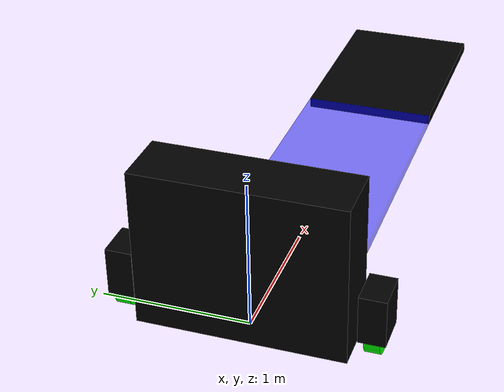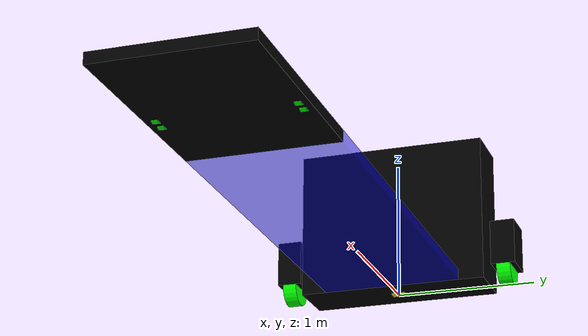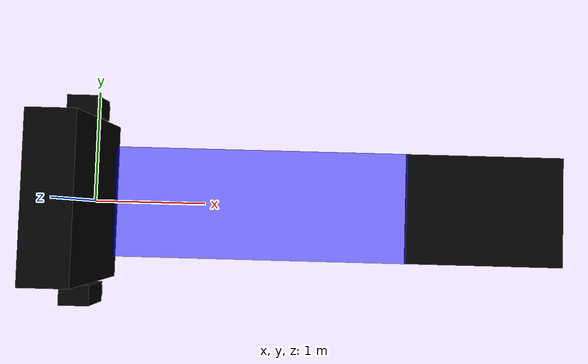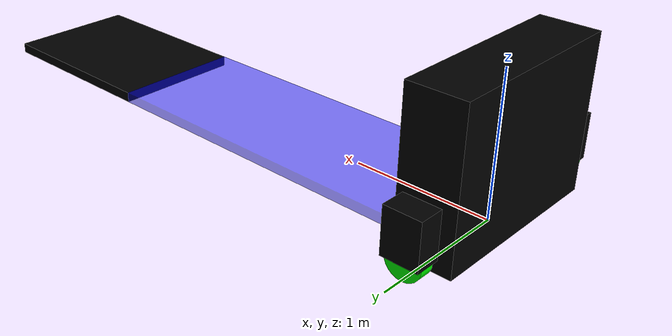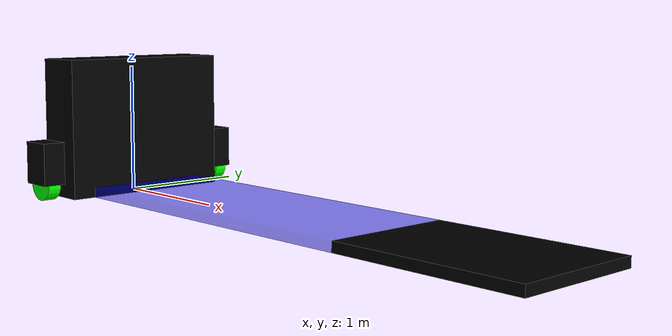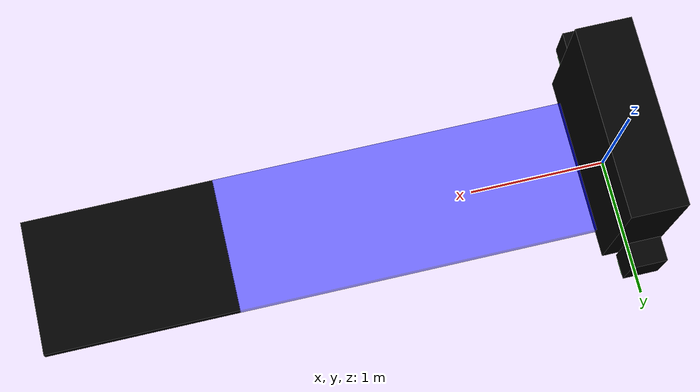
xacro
<?xml version="1.0"?>
<robot
    xmlns:gazebo="http://playerstage.sourceforge.net/gazebo/xmlschema/#gz"
    xmlns:model="http://playerstage.sourceforge.net/gazebo/xmlschema/#model"
    xmlns:sensor="http://playerstage.sourceforge.net/gazebo/xmlschema/#sensor"
    xmlns:body="http://playerstage.sourceforge.net/gazebo/xmlschema/#body"
    xmlns:geom="http://playerstage.sourceforge.net/gazebo/xmlschema/#geom"
    xmlns:joint="http://playerstage.sourceforge.net/gazebo/xmlschema/#joint"
    xmlns:controller="http://playerstage.sourceforge.net/gazebo/xmlschema/#controller"
    xmlns:interface="http://playerstage.sourceforge.net/gazebo/xmlschema/#interface"
    xmlns:rendering="http://playerstage.sourceforge.net/gazebo/xmlschema/#rendering"
    xmlns:physics="http://playerstage.sourceforge.net/gazebo/xmlschema/#physics"
    xmlns:xacro="http://www.ros.org/wiki/xacro"
    name="simple_robot">

    <xacro:include filename="$(find basic_robot_pkg)/urdf/robot_simplified.gazebo" />

    <!-- Physical Constant Macros -->
    <xacro:property name="PI" value="3.1415926535897931" />

    <!-- Dimension Macros -->
    <xacro:property name="wheelRadius" value="0.127" />
    <xacro:property name="wheelWidth" value="0.1" />
    <xacro:property name="wheelWeight" value="10" />

    <xacro:property name="casterWheelRadius" value="0.041" />
    <xacro:property name="casterWheelWidth" value="0.041" />
    <xacro:property name="casterWheelWeight" value="4" />

    <xacro:property name="baseWeight" value="700" />
    <xacro:property name="baseWidth" value="1.36" />
    <xacro:property name="baseHeight" value="1.07" />
    <xacro:property name="baseDepth" value="0.4" />

    <xacro:property name="bottomMotorWeight" value="70" />
    <xacro:property name="bottomMotorWidth" value="0.176" />
    <xacro:property name="bottomMotorHeight" value="0.325" />
    <xacro:property name="bottomMotorDepth" value="0.258" />

    <xacro:property name="mobileFrameWeight" value="400" />
    <xacro:property name="mobileFrameWidth" value="0.992" />
    <xacro:property name="mobileFrameHeight" value="0.075" />
    <xacro:property name="mobileFrameDepth" value="2.638" />

    <xacro:property name="trolleyTopWeight" value="200" />
    <xacro:property name="trolleyTopWidth" value="0.992" />
    <xacro:property name="trolleyTopHeight" value="0.075" />
    <xacro:property name="trolleyTopDepth" value="1.417" />

    <xacro:property name="trolleyBottomWeight" value="60" />
    <xacro:property name="trolleyBottomWidth" value="0.978" />
    <xacro:property name="trolleyBottomHeight" value="0.067" />
    <xacro:property name="trolleyBottomDepth" value="0.382" />

    <xacro:property name="wheelsAxleSpacing" value="1.680" />
    <xacro:property name="castersAxleSpacing" value="0.861" />
    <xacro:property name="castersSpaceFrontRear" value="0.09" />
    <xacro:property name="distanceToTheGround" value="0.01" />
    <xacro:property name="distanceFromTrolleyTopToTrolleyBottom" value="0.1525" />
    <xacro:property name="heightCasterWheels" value="${-trolleyTopHeight/2.0 - distanceToTheGround + casterWheelRadius}" />

    <!-- Physical Physics Macros -->
    <xacro:property name="maxInt" value="2147483647" />
    <xacro:property name="PROPULSION_MAX_VELOCITY" value="1.00"/> <!-- radians/sec -->
    <xacro:property name="PROPULSION_MAX_EFFORT" value="10000"/>
    <xacro:property name="DIRECTION_MAX_VELOCITY" value="1.57"/> <!-- radian/sec -->
    <xacro:property name="DIRECTION_MAX_EFFORT" value="10000000000"/>
    <xacro:property name="ELEVATION_MAX_EFFORT" value="40000"/>
    <xacro:property name="ELEVATION_MAX_VELOCITY" value="0.1"/>
    <xacro:property name="EXTEND_MAX_EFFORT" value="1000000"/>
    <xacro:property name="EXTEND_MAX_VELOCITY" value="0.06"/>
    <xacro:property name="ROULETTE_MAX_EFFORT" value="800"/>
    <xacro:property name="ROULETTE_MAX_VELOCITY" value="100"/>

    <!-- Physical Material Macros -->
    <material name="Red">
    	<color rgba="1.0 0 0 1.0"/>
    </material>
    <material name="Green">
    	<color rgba="0 1.0 0 1.0"/>
    </material>
    <material name="Blue">
    	<color rgba="0 0 1.0 0.5"/>
    </material>
    <material name="Black">
    	<color rgba="0 0 0 1.0"/>
    </material>
    <material name="Aqua">
    	<color rgba="0 255 255 1.0"/>
    </material>

<link name="base_footprint">
        <visual>
    <origin xyz="0 0 ${distanceToTheGround}" rpy="0 0 0" />
    <geometry>
        <box size="0.001 0.001 0.001" />
    </geometry>
</visual>

<inertial>
<origin
        xyz="0 0.0 0"
        rpy="0 0 0" />
<mass
        value="0.0001" />
<inertia
        ixx="0"
        ixy="0"
        ixz="0"
        iyy="0"
        iyz="0"
        izz="0" />
</inertial>

</link>

<joint name="base_link_joint" type="fixed">
        <origin xyz="0 0 ${baseHeight/2+distanceToTheGround}" rpy="0 0 0" />
        <parent link="base_footprint"/>
        <child link="base_link" />
</joint>
<gazebo reference="base_link_joint">
  <disableFixedJointLumping>true</disableFixedJointLumping>
</gazebo>

    <link name="base_link">
        <inertial>
            <mass value="${baseWeight}" />
            <origin xyz="0 0 0" />
            <inertia  ixx="${baseWeight*1.0/12.0*(baseWidth*baseWidth + baseHeight*baseHeight)}" ixy="0.0"  ixz="0.0"  iyy="${baseWeight*1.0/12.0*(baseDepth*baseDepth + baseHeight*baseHeight)}"  iyz="0.0"  izz="${baseWeight*1.0/12.0*(baseWidth*baseWidth + baseDepth*baseDepth)}" />
        </inertial>
        <visual>
            <origin xyz="0 0 0" rpy="0 0 0" />
            <geometry>
                <box size="${baseDepth} ${baseWidth} ${baseHeight}" />
            </geometry>
            <material name="Black"/>
        </visual>
        <collision>
            <origin xyz="0 0 0" rpy="0 0 0" />
            <geometry>
                <box size="${baseDepth} ${baseWidth} ${baseHeight}" />
            </geometry>
        </collision>
    </link>
    <gazebo reference="base_link">
        <material>Gazebo/Black</material>
    </gazebo>

<joint name="base_link_to_bottom_motor_left" type="continuous">
    <parent link="base_link"/>
    <child link="bottom_motor_left"/>
    <origin xyz="0.0 ${-baseWidth/2.0 - wheelRadius} ${-baseHeight/2.0 - distanceToTheGround + wheelRadius + bottomMotorHeight/2.0}"/>
    <axis xyz="0 0 -1"/>
    <limit lower="${-maxInt}" upper="${maxInt}" effort="${DIRECTION_MAX_EFFORT}" velocity="${DIRECTION_MAX_VELOCITY}" />
</joint>
<gazebo reference="base_link_to_bottom_motor_left">
  <disableFixedJointLumping>true</disableFixedJointLumping>
</gazebo>

<link name="bottom_motor_left">
    <inertial>
        <mass value="${bottomMotorWeight}" />
        <origin xyz="0 0 0" />
        <inertia  ixx="${bottomMotorWeight*1.0/12.0*(bottomMotorWidth*bottomMotorWidth + bottomMotorHeight*bottomMotorHeight)}" ixy="0.0"  ixz="0.0"  iyy="${bottomMotorWeight*1.0/12.0*(bottomMotorDepth*bottomMotorDepth + bottomMotorHeight*bottomMotorHeight)}"  iyz="0.0"  izz="${bottomMotorWeight*1.0/12.0*(bottomMotorWidth*bottomMotorWidth + bottomMotorDepth*bottomMotorDepth)}" />
    </inertial>
    <visual>
        <origin xyz="0 0 0" rpy="0 0 0" />
        <geometry>
            <box size="${bottomMotorDepth} ${bottomMotorWidth} ${bottomMotorHeight}" />
        </geometry>
        <material name="Black"/>
    </visual>
    <collision>
        <origin xyz="0 0 0" rpy="0 0 0" />
        <geometry>
            <box size="${bottomMotorDepth} ${bottomMotorWidth} ${bottomMotorHeight}" />
        </geometry>
    </collision>
</link>
<gazebo reference="bottom_motor_left">
    <material>Gazebo/Black</material>
</gazebo>

<joint name="bottom_motor_left_to_left_wheel" type="continuous">
    <parent link="bottom_motor_left"/>
    <child link="left_wheel"/>
    <origin xyz="0.0 0.0 ${-bottomMotorHeight/2.0}"/>
    <axis xyz="0 -1 0"/>
    <limit lower="0" upper="0" effort="${PROPULSION_MAX_EFFORT}" velocity="${PROPULSION_MAX_VELOCITY}" />
</joint>
<gazebo reference="bottom_motor_left_to_left_wheel">
  <disableFixedJointLumping>true</disableFixedJointLumping>
</gazebo>

<link name="left_wheel">
    <inertial>
        <mass value="${wheelWeight}" />
        <origin xyz="0 0 0" />
        <inertia  ixx="${wheelWeight*1.0/12.0*(3*wheelRadius*wheelRadius + wheelWidth*wheelWidth)}" ixy="0.0"  ixz="0.0"  iyy="${wheelWeight/2.0*(wheelRadius*wheelRadius)}"  iyz="0.0"  izz="${wheelWeight*1.0/12.0*(3*wheelRadius*wheelRadius + wheelWidth*wheelWidth)}" />
    </inertial>
    <visual>
        <origin xyz="0 0 0" rpy="${PI/2} 0 0" />
        <geometry>
            <cylinder radius="${wheelRadius}" length="${wheelWidth}" />
        </geometry>
        <material name="Green"/>
    </visual>
    <collision>
        <origin xyz="0 0 0" rpy="${PI/2} 0 0" />
        <geometry>
            <cylinder radius="${wheelRadius}" length="${wheelWidth}" />
        </geometry>
    </collision>
</link>
<gazebo reference="left_wheel">
    <material>Gazebo/Green</material>
</gazebo>

<joint name="base_link_to_bottom_motor_right" type="continuous">
    <parent link="base_link"/>
    <child link="bottom_motor_right"/>
    <origin xyz="0.0 ${baseWidth/2.0 + wheelRadius} ${-baseHeight/2.0 - distanceToTheGround + wheelRadius + bottomMotorHeight/2.0}"/>
    <axis xyz="0 0 -1"/>
    <limit lower="${-maxInt}" upper="${maxInt}" effort="${DIRECTION_MAX_EFFORT}" velocity="${DIRECTION_MAX_VELOCITY}" />
</joint>
<gazebo reference="base_link_to_bottom_motor_right">
  <disableFixedJointLumping>true</disableFixedJointLumping>
</gazebo>

<link name="bottom_motor_right">
    <inertial>
        <mass value="${bottomMotorWeight}" />
        <origin xyz="0 0 0" />
        <inertia  ixx="${bottomMotorWeight*1.0/12.0*(bottomMotorWidth*bottomMotorWidth + bottomMotorHeight*bottomMotorHeight)}" ixy="0.0"  ixz="0.0"  iyy="${bottomMotorWeight*1.0/12.0*(bottomMotorDepth*bottomMotorDepth+ bottomMotorHeight*bottomMotorHeight)}"  iyz="0.0"  izz="${bottomMotorWeight*1.0/12.0*(bottomMotorWidth*bottomMotorWidth + bottomMotorDepth*bottomMotorDepth)}" />
    </inertial>
    <visual>
        <origin xyz="0 0 0" rpy="0 0 0" />
        <geometry>
            <box size="${bottomMotorDepth} ${bottomMotorWidth} ${bottomMotorHeight}" />
        </geometry>
        <material name="Black"/>
    </visual>
    <collision>
        <origin xyz="0 0 0" rpy="0 0 0" />
        <geometry>
            <box size="${bottomMotorDepth} ${bottomMotorWidth} ${bottomMotorHeight}" />
        </geometry>
    </collision>
</link>
<gazebo reference="bottom_motor_right">
    <material>Gazebo/Black</material>
</gazebo>

<joint name="bottom_motor_right_to_right_wheel" type="continuous">
    <parent link="bottom_motor_right"/>
    <child link="right_wheel"/>
    <origin xyz="0.0 0.0 ${-bottomMotorHeight/2.0}"/>
    <axis xyz="0 -1 0"/>
    <limit lower="0" upper="0" effort="${PROPULSION_MAX_EFFORT}" velocity="${PROPULSION_MAX_VELOCITY}" />
</joint>
<gazebo reference="bottom_motor_right_to_right_wheel">
  <disableFixedJointLumping>true</disableFixedJointLumping>
</gazebo>

<link name="right_wheel">
    <inertial>
        <mass value="${wheelWeight}" />
        <origin xyz="0 0 0" />
        <inertia  ixx="${wheelWeight*1.0/12.0*(3*wheelRadius*wheelRadius + wheelWidth*wheelWidth)}" ixy="0.0"  ixz="0.0"  iyy="${wheelWeight/2.0*(wheelRadius*wheelRadius)}"  iyz="0.0"  izz="${wheelWeight*1.0/12.0*(3*wheelRadius*wheelRadius + wheelWidth*wheelWidth)}" />
    </inertial>
    <visual>
        <origin xyz="0 0 0" rpy="${PI/2} 0 0" />
        <geometry>
            <cylinder radius="${wheelRadius}" length="${wheelWidth}" />
        </geometry>
        <material name="Green"/>
    </visual>
    <collision>
        <origin xyz="0 0 0" rpy="${PI/2} 0 0" />
        <geometry>
            <cylinder radius="${wheelRadius}" length="${wheelWidth}" />
        </geometry>
    </collision>
</link>
<gazebo reference="right_wheel">
    <material>Gazebo/Green</material>
</gazebo>

<joint name="base_link_to_mobile_frame" type="prismatic">
    <parent link="base_link"/>
    <child link="mobile_frame"/>
    <origin xyz="${baseDepth/2.0 + mobileFrameDepth/2.0} 0.0 ${-baseHeight/2.0 + mobileFrameHeight/2.0}"/>
    <axis xyz="0 0 1"/>
    <limit lower="0" upper="0.10" effort="${ELEVATION_MAX_EFFORT}" velocity="${ELEVATION_MAX_VELOCITY}"/>
</joint>
<gazebo reference="base_link_to_mobile_frame">
  <disableFixedJointLumping>true</disableFixedJointLumping>
</gazebo>

<link name="mobile_frame">
    <inertial>
        <mass value="${mobileFrameWeight}" />
        <origin xyz="0 0 0" />
        <inertia  ixx="${mobileFrameWeight*1.0/12.0*(mobileFrameWidth*mobileFrameWidth + mobileFrameHeight*mobileFrameHeight)}" ixy="0.0"  ixz="0.0"  iyy="${mobileFrameWeight*1.0/12.0*(mobileFrameDepth*mobileFrameDepth + mobileFrameHeight*mobileFrameHeight)}"  iyz="0.0"  izz="${mobileFrameWeight*1.0/12.0*(mobileFrameWidth*mobileFrameWidth + mobileFrameDepth*mobileFrameDepth)}" />
    </inertial>
    <visual>
        <origin xyz="0 0 0" rpy="0 0 0" />
        <geometry>
            <box size="${mobileFrameDepth} ${mobileFrameWidth} ${mobileFrameHeight}" />
        </geometry>
        <material name="Blue"/>
    </visual>
    <collision>
        <origin xyz="0 0 0" rpy="0 0 0" />
        <geometry>
            <box size="${mobileFrameDepth} ${mobileFrameWidth} ${mobileFrameHeight}" />
        </geometry>
    </collision>
</link>
<gazebo reference="mobile_frame">
    <material>Gazebo/Blue</material>
</gazebo>

<joint name="mobile_frame_to_trolley_top" type="prismatic">
    <parent link="mobile_frame"/>
    <child link="trolley_top"/>
    <origin xyz="${mobileFrameDepth/2.0 + trolleyTopDepth/2.0} 0.0 0.0"/>
    <axis xyz="1 0 0" />
    <limit lower="0" upper="1.8" effort="${EXTEND_MAX_EFFORT}" velocity="${EXTEND_MAX_VELOCITY}" />
</joint>
<gazebo reference="mobile_frame_to_trolley_top">
  <disableFixedJointLumping>true</disableFixedJointLumping>
</gazebo>

<link name="trolley_top">
    <inertial>
        <mass value="${trolleyTopWeight}" />
        <origin xyz="0 0 0" />
        <inertia  ixx="${trolleyTopWeight*1.0/12.0*(trolleyTopWidth*trolleyTopWidth + trolleyTopHeight*trolleyTopHeight)}" ixy="0.0"  ixz="0.0"  iyy="${trolleyTopWeight*1.0/12.0*(trolleyTopDepth*trolleyTopDepth + trolleyTopHeight*trolleyTopHeight)}"  iyz="0.0"  izz="${trolleyTopWeight*1.0/12.0*(trolleyTopWidth*trolleyTopWidth + trolleyTopDepth*trolleyTopDepth)}" />
    </inertial>
    <visual>
        <origin xyz="0 0 0" rpy="0 0 0" />
        <geometry>
            <box size="${trolleyTopDepth} ${trolleyTopWidth} ${trolleyTopHeight}" />
        </geometry>
        <material name="Black"/>
    </visual>
    <collision>
        <origin xyz="0 0 0" rpy="0 0 0" />
        <geometry>
            <box size="${trolleyTopDepth} ${trolleyTopWidth} ${trolleyTopHeight}" />
        </geometry>
    </collision>
</link>
<gazebo reference="trolley_top">
    <material>Gazebo/Black</material>
</gazebo>

<joint name="trolley_top_to_trolley_bottom" type="prismatic">
    <parent link="trolley_top"/>
    <child link="trolley_bottom"/>
    <origin xyz="${-distanceFromTrolleyTopToTrolleyBottom} 0.0 0.0"/>
    <axis xyz="0 0 -1" />
    <limit lower="0" upper="0.1" effort="${ELEVATION_MAX_EFFORT}" velocity="${ELEVATION_MAX_VELOCITY}" />
</joint>
<gazebo reference="trolley_top_to_trolley_bottom">
  <disableFixedJointLumping>true</disableFixedJointLumping>
</gazebo>

<link name="trolley_bottom">
    <inertial>
        <mass value="${trolleyBottomWeight}" />
        <origin xyz="0 0 0" />
        <inertia  ixx="${trolleyBottomWeight*1.0/12.0*(trolleyBottomWidth*trolleyBottomWidth + trolleyBottomHeight*trolleyBottomHeight)}" ixy="0.0"  ixz="0.0"  iyy="${trolleyBottomWeight*1.0/12.0*(trolleyBottomDepth*trolleyBottomDepth + trolleyBottomHeight*trolleyBottomHeight)}"  iyz="0.0"  izz="${trolleyBottomWeight*1.0/12.0*(trolleyBottomWidth*trolleyBottomWidth + trolleyBottomDepth*trolleyBottomDepth)}" />
    </inertial>
    <visual>
        <origin xyz="0 0 0" rpy="0 0 0" />
        <geometry>
            <box size="${trolleyBottomDepth} ${trolleyBottomWidth} ${trolleyBottomHeight}" />
        </geometry>
        <material name="Blue"/>
    </visual>
    <collision>
        <origin xyz="0 0 0" rpy="0 0 0" />
        <geometry>
            <box size="${trolleyBottomDepth} ${trolleyBottomWidth} ${trolleyBottomHeight}" />
        </geometry>
    </collision>
</link>
<gazebo reference="trolley_Bottom">
    <material>Gazebo/Blue</material>
</gazebo>

<joint name="trolley_bottom_to_caster_0_left" type="continuous">
    <parent link="trolley_bottom"/>
    <child link="caster_0_left"/>
    <origin xyz="${-castersSpaceFrontRear/2.0} ${-castersAxleSpacing/2.0} ${heightCasterWheels}"/>
    <axis xyz="0 1 0" />
    <limit effort="${ROULETTE_MAX_EFFORT}" velocity="${ROULETTE_MAX_VELOCITY}"/>
</joint>
<gazebo reference="trolley_bottom_to_caster_0_left">
  <disableFixedJointLumping>true</disableFixedJointLumping>
</gazebo>

<link name="caster_0_left">
    <inertial>
        <mass value="${casterWheelWeight}" />
        <origin xyz="0 0 0" />
        <inertia  ixx="${casterWheelWeight*1.0/12.0*(3*casterWheelRadius*casterWheelRadius + casterWheelWidth*casterWheelWidth)}" ixy="0.0"  ixz="0.0"  iyy="${casterWheelWeight/2.0*(casterWheelRadius*casterWheelRadius)}"  iyz="0.0"  izz="${casterWheelWeight*1.0/12.0*(3*casterWheelRadius*casterWheelRadius + casterWheelWidth*casterWheelWidth)}" />
    </inertial>
    <visual>
        <origin xyz="0 0 0" rpy="${PI/2} 0 0" />
        <geometry>
            <cylinder radius="${casterWheelRadius}" length="${casterWheelWidth}" />
        </geometry>
        <material name="Green"/>
    </visual>
    <collision>
        <origin xyz="0 0 0" rpy="${PI/2} 0 0" />
        <geometry>
            <cylinder radius="${casterWheelRadius}" length="${casterWheelWidth}" />
        </geometry>
    </collision>
</link>

<gazebo reference="caster_0_left">
    <material>Gazebo/Green</material>
</gazebo>

<joint name="trolley_bottom_to_caster_1_left" type="continuous">
    <parent link="trolley_bottom"/>
    <child link="caster_1_left"/>
    <origin xyz="${castersSpaceFrontRear/2.0} ${-castersAxleSpacing/2.0} ${heightCasterWheels}"/>
    <axis xyz="0 1 0" />
    <limit effort="${ROULETTE_MAX_EFFORT}" velocity="${ROULETTE_MAX_VELOCITY}"/>
</joint>
<gazebo reference="trolley_bottom_to_caster_1_left">
  <disableFixedJointLumping>true</disableFixedJointLumping>
</gazebo>

<link name="caster_1_left">
    <inertial>
        <mass value="${casterWheelWeight}" />
        <origin xyz="0 0 0" />
        <inertia  ixx="${casterWheelWeight*1.0/12.0*(3*casterWheelRadius*casterWheelRadius + casterWheelWidth*casterWheelWidth)}" ixy="0.0"  ixz="0.0"  iyy="${casterWheelWeight/2.0*(casterWheelRadius*casterWheelRadius)}"  iyz="0.0"  izz="${casterWheelWeight*1.0/12.0*(3*casterWheelRadius*casterWheelRadius + casterWheelWidth*casterWheelWidth)}" />
    </inertial>
    <visual>
        <origin xyz="0 0 0" rpy="${PI/2} 0 0" />
        <geometry>
            <cylinder radius="${casterWheelRadius}" length="${casterWheelWidth}" />
        </geometry>
        <material name="Green"/>
    </visual>
    <collision>
        <origin xyz="0 0 0" rpy="${PI/2} 0 0" />
        <geometry>
            <cylinder radius="${casterWheelRadius}" length="${casterWheelWidth}" />
        </geometry>
    </collision>
</link>

<gazebo reference="caster_1_left">
    <material>Gazebo/Green</material>
</gazebo>

<joint name="trolley_bottom_to_caster_0_right" type="continuous">
    <parent link="trolley_bottom"/>
    <child link="caster_0_right"/>
    <origin xyz="${-castersSpaceFrontRear/2.0} ${castersAxleSpacing/2.0} ${heightCasterWheels}"/>
    <axis xyz="0 1 0" />
    <limit effort="${ROULETTE_MAX_EFFORT}" velocity="${ROULETTE_MAX_VELOCITY}"/>
</joint>
<gazebo reference="trolley_bottom_to_caster_0_right">
  <disableFixedJointLumping>true</disableFixedJointLumping>
</gazebo>

<link name="caster_0_right">
    <inertial>
        <mass value="${casterWheelWeight}" />
        <origin xyz="0 0 0" />
        <inertia  ixx="${casterWheelWeight*1.0/12.0*(3*casterWheelRadius*casterWheelRadius + casterWheelWidth*casterWheelWidth)}" ixy="0.0"  ixz="0.0"  iyy="${casterWheelWeight/2.0*(casterWheelRadius*casterWheelRadius)}"  iyz="0.0"  izz="${casterWheelWeight*1.0/12.0*(3*casterWheelRadius*casterWheelRadius + casterWheelWidth*casterWheelWidth)}" />
    </inertial>
    <visual>
        <origin xyz="0 0 0" rpy="${PI/2} 0 0" />
        <geometry>
            <cylinder radius="${casterWheelRadius}" length="${casterWheelWidth}" />
        </geometry>
        <material name="Green"/>
    </visual>
    <collision>
        <origin xyz="0 0 0" rpy="${PI/2} 0 0" />
        <geometry>
            <cylinder radius="${casterWheelRadius}" length="${casterWheelWidth}" />
        </geometry>
    </collision>
</link>

<gazebo reference="caster_0_right">
    <material>Gazebo/Green</material>
</gazebo>

<joint name="trolley_bottom_to_caster_1_right" type="continuous">
    <parent link="trolley_bottom"/>
    <child link="caster_1_right"/>
    <origin xyz="${castersSpaceFrontRear/2.0} ${castersAxleSpacing/2.0} ${heightCasterWheels}"/>
    <axis xyz="0 1 0" />
    <limit effort="${ROULETTE_MAX_EFFORT}" velocity="${ROULETTE_MAX_VELOCITY}"/>
</joint>
<gazebo reference="trolley_bottom_to_caster_1_right">
  <disableFixedJointLumping>true</disableFixedJointLumping>
</gazebo>

<link name="caster_1_right">
    <inertial>
        <mass value="${casterWheelWeight}" />
        <origin xyz="0 0 0" />
        <inertia  ixx="${casterWheelWeight*1.0/12.0*(3*casterWheelRadius*casterWheelRadius + casterWheelWidth*casterWheelWidth)}" ixy="0.0"  ixz="0.0"  iyy="${casterWheelWeight/2.0*(casterWheelRadius*casterWheelRadius)}"  iyz="0.0"  izz="${casterWheelWeight*1.0/12.0*(3*casterWheelRadius*casterWheelRadius + casterWheelWidth*casterWheelWidth)}" />
    </inertial>
    <visual>
        <origin xyz="0 0 0" rpy="${PI/2} 0 0" />
        <geometry>
            <cylinder radius="${casterWheelRadius}" length="${casterWheelWidth}" />
        </geometry>
        <material name="Green"/>
    </visual>
    <collision>
        <origin xyz="0 0 0" rpy="${PI/2} 0 0" />
        <geometry>
            <cylinder radius="${casterWheelRadius}" length="${casterWheelWidth}" />
        </geometry>
    </collision>
</link>

<gazebo reference="caster_1_right">
    <material>Gazebo/Green</material>
</gazebo>

<!-- virtual joint/link used for the control -->
<link name="virtual_middle_engine">
    <visual>
        <origin xyz="0 0 0" rpy="0 0 0" />
        <geometry>
            <box size="0.001 0.001 0.001" />
        </geometry>
    </visual>
    <inertial>
        <origin xyz="0 0.0 0" rpy="0 0 0" />
        <mass value="0.01" />
        <inertia ixx="0" ixy="0" ixz="0" iyy="0" iyz="0" izz="0"/>
    </inertial>
</link>

<joint name="base_link_to_virtual_middle_engine" type="continuous">
  <origin xyz="0 0.0 ${-baseHeight/2.0 - distanceToTheGround + wheelRadius + bottomMotorHeight/2.0}" rpy="0 0 0" />
  <parent link="base_link" />
  <child link="virtual_middle_engine" />
  <axis xyz="0 0 -1" />
  <limit lower="${-maxInt}" upper="${maxInt}" effort="${DIRECTION_MAX_EFFORT}" velocity="${DIRECTION_MAX_VELOCITY}" />
</joint>

<link name="virtual_middle_wheel">
    <origin xyz="0 0 0" rpy="0 0 0" />
    <visual>
        <origin xyz="0 0 0" rpy="${PI/2} 0 0" />
        <geometry>
            <cylinder radius="${wheelRadius}" length="${wheelWidth}"/>
        </geometry>
        <material name="yellow"/>
    </visual>
    <inertial>
        <origin xyz="0 0.0 0" rpy="${PI/2} 0 0" />
        <mass value="0.01" />
        <inertia ixx="0" ixy="0" ixz="0" iyy="0" iyz="0" izz="0"/>
    </inertial>
</link>

<joint name="virtual_middle_engine_to_virtual_middle_wheel" type="continuous">
  <origin xyz="0 0 ${-bottomMotorHeight/2.0}" rpy="0 0 0" />
  <parent link="virtual_middle_engine" />
  <child link="virtual_middle_wheel" />
  <axis xyz="0 -1 0" />
  <limit lower="0" upper="0" effort="${PROPULSION_MAX_EFFORT}" velocity="${PROPULSION_MAX_VELOCITY}" />
</joint>

<link
        name="control_link">
</link>

<joint name="trolley_bottom_to_control_link" type="fixed">
    <origin xyz="0 0 0" rpy="0 0 0" />
    <parent link="trolley_bottom" />
    <child link="control_link" />
    <axis xyz="0 0 0" />
</joint>

<!-- Transmision -->

<transmission name="left_wheel_steering">
  <type>transmission_interface/SimpleTransmission</type>
  <joint name="base_link_to_bottom_motor_left">
    <hardwareInterface>VelocityJointInterface</hardwareInterface>
  </joint>
  <actuator name="motor3">
    <hardwareInterface>VelocityJointInterface</hardwareInterface>
    <mechanicalReduction>1</mechanicalReduction>
  </actuator>
</transmission>

<transmission name="right_wheel_steering">
  <type>transmission_interface/SimpleTransmission</type>
  <joint name="base_link_to_bottom_motor_right">
    <hardwareInterface>VelocityJointInterface</hardwareInterface>
  </joint>
  <actuator name="motor4">
    <hardwareInterface>VelocityJointInterface</hardwareInterface>
    <mechanicalReduction>1</mechanicalReduction>
  </actuator>
</transmission>

<transmission name="right_wheel_power">
  <type>transmission_interface/SimpleTransmission</type>
  <joint name="bottom_motor_right_to_right_wheel">
    <hardwareInterface>VelocityJointInterface</hardwareInterface>
  </joint>
  <actuator name="motor5">
    <hardwareInterface>VelocityJointInterface</hardwareInterface>
    <mechanicalReduction>10</mechanicalReduction>
  </actuator>
</transmission>

<transmission name="left_wheel_power">
  <type>transmission_interface/SimpleTransmission</type>
  <joint name="bottom_motor_left_to_left_wheel">
    <hardwareInterface>VelocityJointInterface</hardwareInterface>
  </joint>
  <actuator name="motor6">
    <hardwareInterface>VelocityJointInterface</hardwareInterface>
    <mechanicalReduction>-10</mechanicalReduction>
  </actuator>
</transmission>

<transmission name="pillow_front">
  <type>transmission_interface/SimpleTransmission</type>
  <joint name="base_link_to_mobile_frame">
    <hardwareInterface>VelocityJointInterface</hardwareInterface>
  </joint>
  <actuator name="motor7">
    <hardwareInterface>VelocityJointInterface</hardwareInterface>
    <mechanicalReduction>1</mechanicalReduction>
  </actuator>
</transmission>

<transmission name="pillow_back">
  <type>transmission_interface/SimpleTransmission</type>
  <joint name="trolley_top_to_trolley_bottom">
    <hardwareInterface>VelocityJointInterface</hardwareInterface>
  </joint>
  <actuator name="motor8">
    <hardwareInterface>VelocityJointInterface</hardwareInterface>
    <mechanicalReduction>1</mechanicalReduction>
  </actuator>
</transmission>

<transmission name="central_cylinder">
  <type>transmission_interface/SimpleTransmission</type>
  <joint name="mobile_frame_to_trolley_top">
    <hardwareInterface>VelocityJointInterface</hardwareInterface>
  </joint>
  <actuator name="motor9">
    <hardwareInterface>VelocityJointInterface</hardwareInterface>
    <mechanicalReduction>1</mechanicalReduction>
  </actuator>
</transmission>

</robot>
